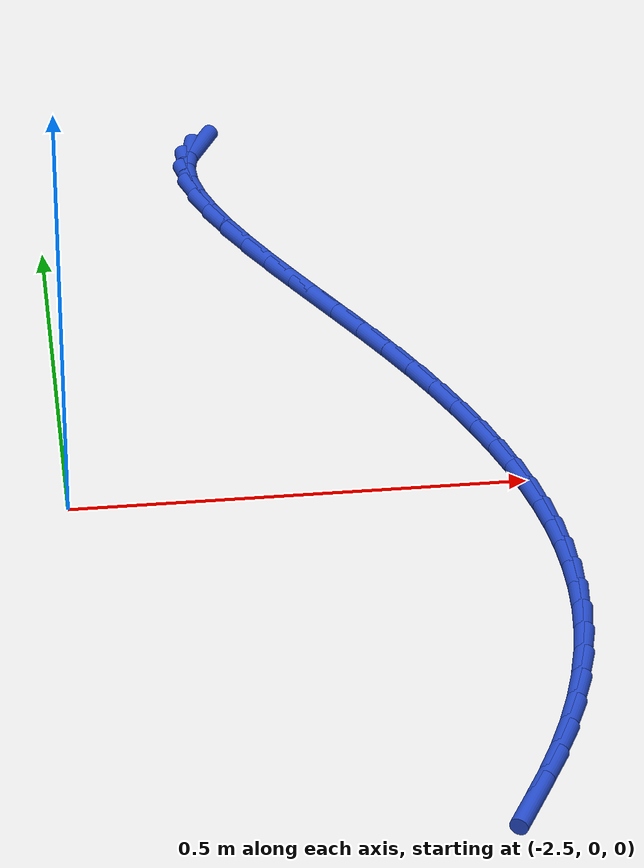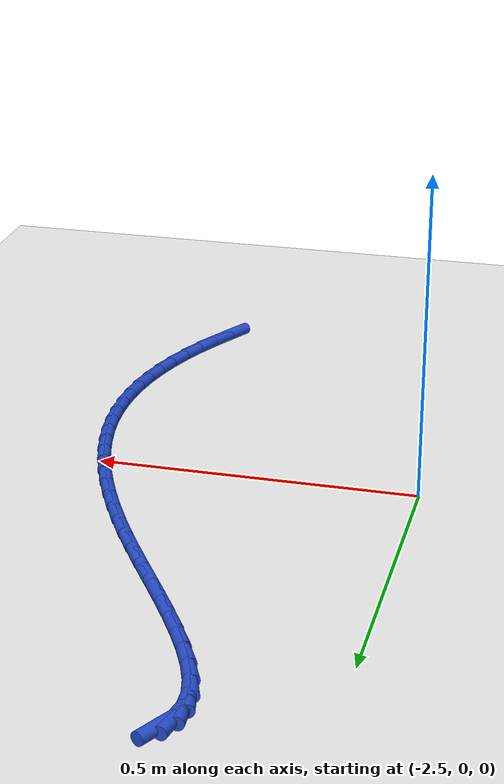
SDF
<sdf version="1.6">
 <world name="default">
  <model name="ground_plane">
   <static>1</static>
   <link name="link">
    <collision name="collision">
     <geometry><plane><normal>0 0 1</normal><size>100 100</size></plane></geometry>
     <surface><friction><ode><mu>100</mu><mu2>50</mu2></ode></friction></surface>
    </collision>
    <visual name="visual">
     <cast_shadows>0</cast_shadows>
     <geometry><plane><normal>0 0 1</normal><size>100 100</size></plane></geometry>
     <material>
      <script><uri>file://media/materials/scripts/gazebo.material</uri><name>Gazebo/WhiteGlow</name></script>
     </material>
    </visual>
   </link>
  </model>
  <model name="line">
   <link name="link_88">
    <pose>-2.3006266140373755 0.6997773346209656 0.01 0 1.57 1.0839538045226649</pose>
    <collision name="collision">
     <geometry><cylinder><radius>0.01</radius><length>0.08</length></cylinder></geometry>
    </collision>
    <visual name="visual">
     <material>
      <script><name>Gazebo/Blue</name><uri>file://media/materials/scripts/gazebo.material</uri></script>
     </material>
     <geometry><cylinder><radius>0.01</radius><length>0.08</length></cylinder></geometry>
    </visual>
   </link>
   <link name="link_89">
    <pose>-2.3121234179415646 0.6780581709763891 0.01 0 1.57 1.3911587001874124</pose>
    <collision name="collision">
     <geometry><cylinder><radius>0.01</radius><length>0.08</length></cylinder></geometry>
    </collision>
    <visual name="visual">
     <material>
      <script><name>Gazebo/Blue</name><uri>file://media/materials/scripts/gazebo.material</uri></script>
     </material>
     <geometry><cylinder><radius>0.01</radius><length>0.08</length></cylinder></geometry>
    </visual>
   </link>
   <link name="link_90">
    <pose>-2.316706943976643 0.6528178203908214 0.01 0 1.57 -1.5143695136441793</pose>
    <collision name="collision">
     <geometry><cylinder><radius>0.01</radius><length>0.08</length></cylinder></geometry>
    </collision>
    <visual name="visual">
     <material>
      <script><name>Gazebo/Blue</name><uri>file://media/materials/scripts/gazebo.material</uri></script>
     </material>
     <geometry><cylinder><radius>0.01</radius><length>0.08</length></cylinder></geometry>
    </visual>
   </link>
   <link name="link_91">
    <pose>-2.3151024731679017 0.6244134592862752 0.01 0 1.57 -1.3481530255386387</pose>
    <collision name="collision">
     <geometry><cylinder><radius>0.01</radius><length>0.08</length></cylinder></geometry>
    </collision>
    <visual name="visual">
     <material>
      <script><name>Gazebo/Blue</name><uri>file://media/materials/scripts/gazebo.material</uri></script>
     </material>
     <geometry><cylinder><radius>0.01</radius><length>0.08</length></cylinder></geometry>
    </visual>
   </link>
   <link name="link_92">
    <pose>-2.3080365174543496 0.5932029320522808 0.01 0 1.57 -1.233583481979979</pose>
    <collision name="collision">
     <geometry><cylinder><radius>0.01</radius><length>0.08</length></cylinder></geometry>
    </collision>
    <visual name="visual">
     <material>
      <script><name>Gazebo/Blue</name><uri>file://media/materials/scripts/gazebo.material</uri></script>
     </material>
     <geometry><cylinder><radius>0.01</radius><length>0.08</length></cylinder></geometry>
    </visual>
   </link>
   <link name="link_93">
    <pose>-2.2962355887749903 0.5595440830783699 0.01 0 1.57 -1.1544235073145646</pose>
    <collision name="collision">
     <geometry><cylinder><radius>0.01</radius><length>0.08</length></cylinder></geometry>
    </collision>
    <visual name="visual">
     <material>
      <script><name>Gazebo/Blue</name><uri>file://media/materials/scripts/gazebo.material</uri></script>
     </material>
     <geometry><cylinder><radius>0.01</radius><length>0.08</length></cylinder></geometry>
    </visual>
   </link>
   <link name="link_94">
    <pose>-2.280426199068833 0.5237947567540732 0.01 0 1.57 -1.099698785076857</pose>
    <collision name="collision">
     <geometry><cylinder><radius>0.01</radius><length>0.08</length></cylinder></geometry>
    </collision>
    <visual name="visual">
     <material>
      <script><name>Gazebo/Blue</name><uri>file://media/materials/scripts/gazebo.material</uri></script>
     </material>
     <geometry><cylinder><radius>0.01</radius><length>0.08</length></cylinder></geometry>
    </visual>
   </link>
   <link name="link_95">
    <pose>-2.2613348602748804 0.4863127974689205 0.01 0 1.57 -1.062524658785044</pose>
    <collision name="collision">
     <geometry><cylinder><radius>0.01</radius><length>0.08</length></cylinder></geometry>
    </collision>
    <visual name="visual">
     <material>
      <script><name>Gazebo/Blue</name><uri>file://media/materials/scripts/gazebo.material</uri></script>
     </material>
     <geometry><cylinder><radius>0.01</radius><length>0.08</length></cylinder></geometry>
    </visual>
   </link>
   <link name="link_96">
    <pose>-2.2396880843321427 0.44745604961244395 0.01 0 1.57 -1.038688744914509</pose>
    <collision name="collision">
     <geometry><cylinder><radius>0.01</radius><length>0.08</length></cylinder></geometry>
    </collision>
    <visual name="visual">
     <material>
      <script><name>Gazebo/Blue</name><uri>file://media/materials/scripts/gazebo.material</uri></script>
     </material>
     <geometry><cylinder><radius>0.01</radius><length>0.08</length></cylinder></geometry>
    </visual>
   </link>
   <link name="link_97">
    <pose>-2.2162123831796237 0.4075823575741737 0.01 0 1.57 -1.025701735544246</pose>
    <collision name="collision">
     <geometry><cylinder><radius>0.01</radius><length>0.08</length></cylinder></geometry>
    </collision>
    <visual name="visual">
     <material>
      <script><name>Gazebo/Blue</name><uri>file://media/materials/scripts/gazebo.material</uri></script>
     </material>
     <geometry><cylinder><radius>0.01</radius><length>0.08</length></cylinder></geometry>
    </visual>
   </link>
   <link name="link_98">
    <pose>-2.191634268756331 0.3670495657436404 0.01 0 1.57 -1.022249139261928</pose>
    <collision name="collision">
     <geometry><cylinder><radius>0.01</radius><length>0.08</length></cylinder></geometry>
    </collision>
    <visual name="visual">
     <material>
      <script><name>Gazebo/Blue</name><uri>file://media/materials/scripts/gazebo.material</uri></script>
     </material>
     <geometry><cylinder><radius>0.01</radius><length>0.08</length></cylinder></geometry>
    </visual>
   </link>
   <link name="link_99">
    <pose>-2.166680253001271 0.3262155185103755 0.01 0 1.57 -1.0279113754632045</pose>
    <collision name="collision">
     <geometry><cylinder><radius>0.01</radius><length>0.08</length></cylinder></geometry>
    </collision>
    <visual name="visual">
     <material>
      <script><name>Gazebo/Blue</name><uri>file://media/materials/scripts/gazebo.material</uri></script>
     </material>
     <geometry><cylinder><radius>0.01</radius><length>0.08</length></cylinder></geometry>
    </visual>
   </link>
   <link name="link_100">
    <pose>-2.14207684785345 0.28543806026390944 0.01 0 1.57 -1.0430415223504914</pose>
    <collision name="collision">
     <geometry><cylinder><radius>0.01</radius><length>0.08</length></cylinder></geometry>
    </collision>
    <visual name="visual">
     <material>
      <script><name>Gazebo/Blue</name><uri>file://media/materials/scripts/gazebo.material</uri></script>
     </material>
     <geometry><cylinder><radius>0.01</radius><length>0.08</length></cylinder></geometry>
    </visual>
   </link>
   <link name="link_101">
    <pose>-2.118548174654778 0.24507355294321426 0.01 0 1.57 -1.066006336174288</pose>
    <collision name="collision">
     <geometry><cylinder><radius>0.01</radius><length>0.08</length></cylinder></geometry>
    </collision>
    <visual name="visual">
     <material>
      <script><name>Gazebo/Blue</name><uri>file://media/materials/scripts/gazebo.material</uri></script>
     </material>
     <geometry><cylinder><radius>0.01</radius><length>0.08</length></cylinder></geometry>
    </visual>
   </link>
   <link name="link_102">
    <pose>-2.096593142932408 0.20533870075020844 0.01 0 1.57 -1.0925661171701653</pose>
    <collision name="collision">
     <geometry><cylinder><radius>0.01</radius><length>0.08</length></cylinder></geometry>
    </collision>
    <visual name="visual">
     <material>
      <script><name>Gazebo/Blue</name><uri>file://media/materials/scripts/gazebo.material</uri></script>
     </material>
     <geometry><cylinder><radius>0.01</radius><length>0.08</length></cylinder></geometry>
    </visual>
   </link>
   <link name="link_103">
    <pose>-2.076304073351615 0.16619807510939935 0.01 0 1.57 -1.1224033444094963</pose>
    <collision name="collision">
     <geometry><cylinder><radius>0.01</radius><length>0.08</length></cylinder></geometry>
    </collision>
    <visual name="visual">
     <material>
      <script><name>Gazebo/Blue</name><uri>file://media/materials/scripts/gazebo.material</uri></script>
     </material>
     <geometry><cylinder><radius>0.01</radius><length>0.08</length></cylinder></geometry>
    </visual>
   </link>
   <link name="link_104">
    <pose>-2.0577306024488973 0.12758977827963494 0.01 0 1.57 -1.1556838594748573</pose>
    <collision name="collision">
     <geometry><cylinder><radius>0.01</radius><length>0.08</length></cylinder></geometry>
    </collision>
    <visual name="visual">
     <material>
      <script><name>Gazebo/Blue</name><uri>file://media/materials/scripts/gazebo.material</uri></script>
     </material>
     <geometry><cylinder><radius>0.01</radius><length>0.08</length></cylinder></geometry>
    </visual>
   </link>
   <link name="link_105">
    <pose>-2.0409223667607534 0.08945191251976321 0.01 0 1.57 -1.1925395802038052</pose>
    <collision name="collision">
     <geometry><cylinder><radius>0.01</radius><length>0.08</length></cylinder></geometry>
    </collision>
    <visual name="visual">
     <material>
      <script><name>Gazebo/Blue</name><uri>file://media/materials/scripts/gazebo.material</uri></script>
     </material>
     <geometry><cylinder><radius>0.01</radius><length>0.08</length></cylinder></geometry>
    </visual>
   </link>
   <link name="link_106">
    <pose>-2.02592900282368 0.05172258008863122 0.01 0 1.57 -1.2330516147252712</pose>
    <collision name="collision">
     <geometry><cylinder><radius>0.01</radius><length>0.08</length></cylinder></geometry>
    </collision>
    <visual name="visual">
     <material>
      <script><name>Gazebo/Blue</name><uri>file://media/materials/scripts/gazebo.material</uri></script>
     </material>
     <geometry><cylinder><radius>0.01</radius><length>0.08</length></cylinder></geometry>
    </visual>
   </link>
   <link name="link_107">
    <pose>-2.012800147174176 0.014339883245088673 0.01 0 1.57 -1.2772308324285817</pose>
    <collision name="collision">
     <geometry><cylinder><radius>0.01</radius><length>0.08</length></cylinder></geometry>
    </collision>
    <visual name="visual">
     <material>
      <script><name>Gazebo/Blue</name><uri>file://media/materials/scripts/gazebo.material</uri></script>
     </material>
     <geometry><cylinder><radius>0.01</radius><length>0.08</length></cylinder></geometry>
    </visual>
   </link>
   <link name="link_108">
    <pose>-2.001585436348739 -0.022758075752017305 0.01 0 1.57 -1.3249972631185867</pose>
    <collision name="collision">
     <geometry><cylinder><radius>0.01</radius><length>0.08</length></cylinder></geometry>
    </collision>
    <visual name="visual">
     <material>
      <script><name>Gazebo/Blue</name><uri>file://media/materials/scripts/gazebo.material</uri></script>
     </material>
     <geometry><cylinder><radius>0.01</radius><length>0.08</length></cylinder></geometry>
    </visual>
   </link>
   <link name="link_109">
    <pose>-1.992334506883867 -0.0596331946438388 0.01 0 1.57 -1.3761606945347198</pose>
    <collision name="collision">
     <geometry><cylinder><radius>0.01</radius><length>0.08</length></cylinder></geometry>
    </collision>
    <visual name="visual">
     <material>
      <script><name>Gazebo/Blue</name><uri>file://media/materials/scripts/gazebo.material</uri></script>
     </material>
     <geometry><cylinder><radius>0.01</radius><length>0.08</length></cylinder></geometry>
    </visual>
   </link>
   <link name="link_110">
    <pose>-1.9850969953160567 -0.09634737117152781 0.01 0 1.57 -1.4304058160707418</pose>
    <collision name="collision">
     <geometry><cylinder><radius>0.01</radius><length>0.08</length></cylinder></geometry>
    </collision>
    <visual name="visual">
     <material>
      <script><name>Gazebo/Blue</name><uri>file://media/materials/scripts/gazebo.material</uri></script>
     </material>
     <geometry><cylinder><radius>0.01</radius><length>0.08</length></cylinder></geometry>
    </visual>
   </link>
   <link name="link_111">
    <pose>-1.979922538181808 -0.13296250307623644 0.01 0 1.57 -1.4872858418946617</pose>
    <collision name="collision">
     <geometry><cylinder><radius>0.01</radius><length>0.08</length></cylinder></geometry>
    </collision>
    <visual name="visual">
     <material>
      <script><name>Gazebo/Blue</name><uri>file://media/materials/scripts/gazebo.material</uri></script>
     </material>
     <geometry><cylinder><radius>0.01</radius><length>0.08</length></cylinder></geometry>
    </visual>
   </link>
   <link name="link_112">
    <pose>-1.9768607720176166 -0.1695404880991175 0.01 0 1.57 -1.5462282811294927</pose>
    <collision name="collision">
     <geometry><cylinder><radius>0.01</radius><length>0.08</length></cylinder></geometry>
    </collision>
    <visual name="visual">
     <material>
      <script><name>Gazebo/Blue</name><uri>file://media/materials/scripts/gazebo.material</uri></script>
     </material>
     <geometry><cylinder><radius>0.01</radius><length>0.08</length></cylinder></geometry>
    </visual>
   </link>
   <link name="link_113">
    <pose>-1.9759613333599813 -0.20614322398132134 0.01 0 1.57 1.5350375938575958</pose>
    <collision name="collision">
     <geometry><cylinder><radius>0.01</radius><length>0.08</length></cylinder></geometry>
    </collision>
    <visual name="visual">
     <material>
      <script><name>Gazebo/Blue</name><uri>file://media/materials/scripts/gazebo.material</uri></script>
     </material>
     <geometry><cylinder><radius>0.01</radius><length>0.08</length></cylinder></geometry>
    </visual>
   </link>
   <link name="link_114">
    <pose>-1.977273858745401 -0.24283260846400095 0.01 0 1.57 1.4740760756248024</pose>
    <collision name="collision">
     <geometry><cylinder><radius>0.01</radius><length>0.08</length></cylinder></geometry>
    </collision>
    <visual name="visual">
     <material>
      <script><name>Gazebo/Blue</name><uri>file://media/materials/scripts/gazebo.material</uri></script>
     </material>
     <geometry><cylinder><radius>0.01</radius><length>0.08</length></cylinder></geometry>
    </visual>
   </link>
   <link name="link_115">
    <pose>-1.9808479847103708 -0.2796705392883082 0.01 0 1.57 1.4132565384101807</pose>
    <collision name="collision">
     <geometry><cylinder><radius>0.01</radius><length>0.08</length></cylinder></geometry>
    </collision>
    <visual name="visual">
     <material>
      <script><name>Gazebo/Blue</name><uri>file://media/materials/scripts/gazebo.material</uri></script>
     </material>
     <geometry><cylinder><radius>0.01</radius><length>0.08</length></cylinder></geometry>
    </visual>
   </link>
   <link name="link_116">
    <pose>-1.9867333477913918 -0.31671891419539533 0.01 0 1.57 1.3533343278306436</pose>
    <collision name="collision">
     <geometry><cylinder><radius>0.01</radius><length>0.08</length></cylinder></geometry>
    </collision>
    <visual name="visual">
     <material>
      <script><name>Gazebo/Blue</name><uri>file://media/materials/scripts/gazebo.material</uri></script>
     </material>
     <geometry><cylinder><radius>0.01</radius><length>0.08</length></cylinder></geometry>
    </visual>
   </link>
   <link name="link_117">
    <pose>-1.994979584524959 -0.3540396309264141 0.01 0 1.57 1.294998202294222</pose>
    <collision name="collision">
     <geometry><cylinder><radius>0.01</radius><length>0.08</length></cylinder></geometry>
    </collision>
    <visual name="visual">
     <material>
      <script><name>Gazebo/Blue</name><uri>file://media/materials/scripts/gazebo.material</uri></script>
     </material>
     <geometry><cylinder><radius>0.01</radius><length>0.08</length></cylinder></geometry>
    </visual>
   </link>
   <link name="link_118">
    <pose>-2.0056363314475725 -0.3916945872225168 0.01 0 1.57 1.2388348790654615</pose>
    <collision name="collision">
     <geometry><cylinder><radius>0.01</radius><length>0.08</length></cylinder></geometry>
    </collision>
    <visual name="visual">
     <material>
      <script><name>Gazebo/Blue</name><uri>file://media/materials/scripts/gazebo.material</uri></script>
     </material>
     <geometry><cylinder><radius>0.01</radius><length>0.08</length></cylinder></geometry>
    </visual>
   </link>
   <link name="link_119">
    <pose>-2.0187532250957285 -0.42974568082485637 0.01 0 1.57 1.1853072730947252</pose>
    <collision name="collision">
     <geometry><cylinder><radius>0.01</radius><length>0.08</length></cylinder></geometry>
    </collision>
    <visual name="visual">
     <material>
      <script><name>Gazebo/Blue</name><uri>file://media/materials/scripts/gazebo.material</uri></script>
     </material>
     <geometry><cylinder><radius>0.01</radius><length>0.08</length></cylinder></geometry>
    </visual>
   </link>
   <link name="link_120">
    <pose>-2.0343799020059254 -0.46825480947458287 0.01 0 1.57 1.134747190104823</pose>
    <collision name="collision">
     <geometry><cylinder><radius>0.01</radius><length>0.08</length></cylinder></geometry>
    </collision>
    <visual name="visual">
     <material>
      <script><name>Gazebo/Blue</name><uri>file://media/materials/scripts/gazebo.material</uri></script>
     </material>
     <geometry><cylinder><radius>0.01</radius><length>0.08</length></cylinder></geometry>
    </visual>
   </link>
   <link name="link_121">
    <pose>-2.0525659987146616 -0.5072838709128494 0.01 0 1.57 1.0917120460952503</pose>
    <collision name="collision">
     <geometry><cylinder><radius>0.01</radius><length>0.08</length></cylinder></geometry>
    </collision>
    <visual name="visual">
     <material>
      <script><name>Gazebo/Blue</name><uri>file://media/materials/scripts/gazebo.material</uri></script>
     </material>
     <geometry><cylinder><radius>0.01</radius><length>0.08</length></cylinder></geometry>
    </visual>
   </link>
   <link name="link_122">
    <pose>-2.0730751469752455 -0.5467664919469998 0.01 0 1.57 1.0851671355699337</pose>
    <collision name="collision">
     <geometry><cylinder><radius>0.01</radius><length>0.08</length></cylinder></geometry>
    </collision>
    <visual name="visual">
     <material>
      <script><name>Gazebo/Blue</name><uri>file://media/materials/scripts/gazebo.material</uri></script>
     </material>
     <geometry><cylinder><radius>0.01</radius><length>0.08</length></cylinder></geometry>
    </visual>
   </link>
  </model>
 </world>
</sdf>
